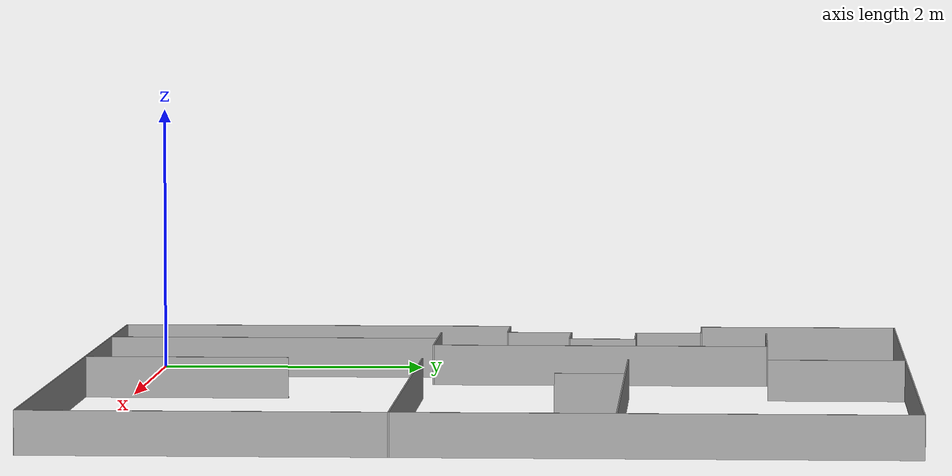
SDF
<?xml version='1.0'?>
<sdf version='1.6'>
  <model name='arena'>
    <pose frame=''>2.71801 2.66251 0 0 -0 0</pose>
    <link name='Wall_1'>
      <collision name='Wall_1_Collision'>
        <geometry>
          <box>
            <size>6 0.01 0.3</size>
          </box>
        </geometry>
        <pose frame=''>0 0 0.15 0 -0 0</pose>
      </collision>
      <visual name='Wall_1_Visual'>
        <pose frame=''>0 0 0.15 0 -0 0</pose>
        <geometry>
          <box>
            <size>6 0.01 0.3</size>
          </box>
        </geometry>
        <material>
          <script>
            <uri>file://media/materials/scripts/gazebo.material</uri>
            <name>Gazebo/Grey</name>
          </script>
          <ambient>1 1 1 1</ambient>
        </material>
        <meta>
          <layer>0</layer>
        </meta>
      </visual>
      <pose frame=''>0.001988 -2.99751 0 0 -0 0</pose>
    </link>
    <link name='Wall_11'>
      <collision name='Wall_11_Collision'>
        <geometry>
          <box>
            <size>1.5 0.01 0.3</size>
          </box>
        </geometry>
        <pose frame=''>0 0 0.15 0 -0 0</pose>
      </collision>
      <visual name='Wall_11_Visual'>
        <pose frame=''>0 0 0.15 0 -0 0</pose>
        <geometry>
          <box>
            <size>1.5 0.01 0.3</size>
          </box>
        </geometry>
        <material>
          <script>
            <uri>file://media/materials/scripts/gazebo.material</uri>
            <name>Gazebo/Grey</name>
          </script>
          <ambient>1 1 1 1</ambient>
        </material>
        <meta>
          <layer>0</layer>
        </meta>
      </visual>
      <pose frame=''>-2.99841 2.25251 0 0 -0 1.5708</pose>
    </link>
    <link name='Wall_20'>
      <collision name='Wall_20_Collision'>
        <geometry>
          <box>
            <size>0.5 0.01 0.3</size>
          </box>
        </geometry>
        <pose frame=''>0 0 0.15 0 -0 0</pose>
      </collision>
      <visual name='Wall_20_Visual'>
        <pose frame=''>0 0 0.15 0 -0 0</pose>
        <geometry>
          <box>
            <size>0.5 0.01 0.3</size>
          </box>
        </geometry>
        <material>
          <script>
            <uri>file://media/materials/scripts/gazebo.material</uri>
            <name>Gazebo/Grey</name>
          </script>
          <ambient>1 1 1 1</ambient>
        </material>
        <meta>
          <layer>0</layer>
        </meta>
      </visual>
      <pose frame=''>-2.75425 1.50057 0 0 -0 0</pose>
    </link>
    <link name='Wall_22'>
      <collision name='Wall_22_Collision'>
        <geometry>
          <box>
            <size>0.5 0.01 0.3</size>
          </box>
        </geometry>
        <pose frame=''>0 0 0.15 0 -0 0</pose>
      </collision>
      <visual name='Wall_22_Visual'>
        <pose frame=''>0 0 0.15 0 -0 0</pose>
        <geometry>
          <box>
            <size>0.5 0.01 0.3</size>
          </box>
        </geometry>
        <material>
          <script>
            <uri>file://media/materials/scripts/gazebo.material</uri>
            <name>Gazebo/Grey</name>
          </script>
          <ambient>1 1 1 1</ambient>
        </material>
        <meta>
          <layer>0</layer>
        </meta>
      </visual>
      <pose frame=''>-2.50969 1.25495 0 0 -0 1.5708</pose>
    </link>
    <link name='Wall_24'>
      <collision name='Wall_24_Collision'>
        <geometry>
          <box>
            <size>0.5 0.01 0.3</size>
          </box>
        </geometry>
        <pose frame=''>0 0 0.15 0 -0 0</pose>
      </collision>
      <visual name='Wall_24_Visual'>
        <pose frame=''>0 0 0.15 0 -0 0</pose>
        <geometry>
          <box>
            <size>0.5 0.01 0.3</size>
          </box>
        </geometry>
        <material>
          <script>
            <uri>file://media/materials/scripts/gazebo.material</uri>
            <name>Gazebo/Grey</name>
          </script>
          <ambient>1 1 1 1</ambient>
        </material>
        <meta>
          <layer>0</layer>
        </meta>
      </visual>
      <pose frame=''>-2.26459 1.00122 0 0 -0 0</pose>
    </link>
    <link name='Wall_28'>
      <collision name='Wall_28_Collision'>
        <geometry>
          <box>
            <size>0.5 0.01 0.3</size>
          </box>
        </geometry>
        <pose frame=''>0 0 0.15 0 -0 0</pose>
      </collision>
      <visual name='Wall_28_Visual'>
        <pose frame=''>0 0 0.15 0 -0 0</pose>
        <geometry>
          <box>
            <size>0.5 0.01 0.3</size>
          </box>
        </geometry>
        <material>
          <script>
            <uri>file://media/materials/scripts/gazebo.material</uri>
            <name>Gazebo/Grey</name>
          </script>
          <ambient>1 1 1 1</ambient>
        </material>
        <meta>
          <layer>0</layer>
        </meta>
      </visual>
      <pose frame=''>-2.01503 0.755808 0 0 -0 -1.5708</pose>
    </link>
    <link name='Wall_30'>
      <collision name='Wall_30_Collision'>
        <geometry>
          <box>
            <size>0.5 0.01 0.3</size>
          </box>
        </geometry>
        <pose frame=''>0 0 0.15 0 -0 0</pose>
      </collision>
      <visual name='Wall_30_Visual'>
        <pose frame=''>0 0 0.15 0 -0 0</pose>
        <geometry>
          <box>
            <size>0.5 0.01 0.3</size>
          </box>
        </geometry>
        <material>
          <script>
            <uri>file://media/materials/scripts/gazebo.material</uri>
            <name>Gazebo/Grey</name>
          </script>
          <ambient>1 1 1 1</ambient>
        </material>
        <meta>
          <layer>0</layer>
        </meta>
      </visual>
      <pose frame=''>-2.25991 0.503524 0 0 -0 0</pose>
    </link>
    <link name='Wall_34'>
      <collision name='Wall_34_Collision'>
        <geometry>
          <box>
            <size>0.5 0.01 0.3</size>
          </box>
        </geometry>
        <pose frame=''>0 0 0.15 0 -0 0</pose>
      </collision>
      <visual name='Wall_34_Visual'>
        <pose frame=''>0 0 0.15 0 -0 0</pose>
        <geometry>
          <box>
            <size>0.5 0.01 0.3</size>
          </box>
        </geometry>
        <material>
          <script>
            <uri>file://media/materials/scripts/gazebo.material</uri>
            <name>Gazebo/Grey</name>
          </script>
          <ambient>1 1 1 1</ambient>
        </material>
        <meta>
          <layer>0</layer>
        </meta>
      </visual>
      <pose frame=''>-2.50907 0.257403 0 0 -0 -1.5708</pose>
    </link>
    <link name='Wall_36'>
      <collision name='Wall_36_Collision'>
        <geometry>
          <box>
            <size>0.5 0.01 0.3</size>
          </box>
        </geometry>
        <pose frame=''>0 0 0.15 0 -0 0</pose>
      </collision>
      <visual name='Wall_36_Visual'>
        <pose frame=''>0 0 0.15 0 -0 0</pose>
        <geometry>
          <box>
            <size>0.5 0.01 0.3</size>
          </box>
        </geometry>
        <material>
          <script>
            <uri>file://media/materials/scripts/gazebo.material</uri>
            <name>Gazebo/Grey</name>
          </script>
          <ambient>1 1 1 1</ambient>
        </material>
        <meta>
          <layer>0</layer>
        </meta>
      </visual>
      <pose frame=''>-2.75227 0.011599 0 0 -0 0</pose>
    </link>
    <link name='Wall_38'>
      <collision name='Wall_38_Collision'>
        <geometry>
          <box>
            <size>3.012 0.01 0.3</size>
          </box>
        </geometry>
        <pose frame=''>0 0 0.15 0 -0 0</pose>
      </collision>
      <visual name='Wall_38_Visual'>
        <pose frame=''>0 0 0.15 0 -0 0</pose>
        <geometry>
          <box>
            <size>3.012 0.01 0.3</size>
          </box>
        </geometry>
        <material>
          <script>
            <uri>file://media/materials/scripts/gazebo.material</uri>
            <name>Gazebo/Grey</name>
          </script>
          <ambient>1 1 1 1</ambient>
        </material>
        <meta>
          <layer>0</layer>
        </meta>
      </visual>
      <pose frame=''>-2.99601 -1.49551 0 0 -0 -1.5708</pose>
    </link>
    <link name='Wall_41'>
      <collision name='Wall_41_Collision'>
        <geometry>
          <box>
            <size>1 0.01 0.3</size>
          </box>
        </geometry>
        <pose frame=''>0 0 0.15 0 -0 0</pose>
      </collision>
      <visual name='Wall_41_Visual'>
        <pose frame=''>0 0 0.15 0 -0 0</pose>
        <geometry>
          <box>
            <size>1 0.01 0.3</size>
          </box>
        </geometry>
        <material>
          <script>
            <uri>file://media/materials/scripts/gazebo.material</uri>
            <name>Gazebo/Grey</name>
          </script>
          <ambient>1 1 1 1</ambient>
        </material>
        <meta>
          <layer>0</layer>
        </meta>
      </visual>
      <pose frame=''>-0.498279 2.49812 0 0 -0 1.5708</pose>
    </link>
    <link name='Wall_44'>
      <collision name='Wall_44_Collision'>
        <geometry>
          <box>
            <size>3.5 0.01 0.3</size>
          </box>
        </geometry>
        <pose frame=''>0 0 0.15 0 -0 0</pose>
      </collision>
      <visual name='Wall_44_Visual'>
        <pose frame=''>0 0 0.15 0 -0 0</pose>
        <geometry>
          <box>
            <size>3.5 0.01 0.3</size>
          </box>
        </geometry>
        <material>
          <script>
            <uri>file://media/materials/scripts/gazebo.material</uri>
            <name>Gazebo/Grey</name>
          </script>
          <ambient>1 1 1 1</ambient>
        </material>
        <meta>
          <layer>0</layer>
        </meta>
      </visual>
      <pose frame=''>1.25071 0.982331 0 0 -0 0</pose>
    </link>
    <link name='Wall_46'>
      <collision name='Wall_46_Collision'>
        <geometry>
          <box>
            <size>0.5 0.01 0.3</size>
          </box>
        </geometry>
        <pose frame=''>0 0 0.15 0 -0 0</pose>
      </collision>
      <visual name='Wall_46_Visual'>
        <pose frame=''>0 0 0.15 0 -0 0</pose>
        <geometry>
          <box>
            <size>0.5 0.01 0.3</size>
          </box>
        </geometry>
        <material>
          <script>
            <uri>file://media/materials/scripts/gazebo.material</uri>
            <name>Gazebo/Grey</name>
          </script>
          <ambient>1 1 1 1</ambient>
        </material>
        <meta>
          <layer>0</layer>
        </meta>
      </visual>
      <pose frame=''>0.496275 0.729352 0 0 -0 1.5708</pose>
    </link>
    <link name='Wall_48'>
      <collision name='Wall_48_Collision'>
        <geometry>
          <box>
            <size>3.5 0.01 0.3</size>
          </box>
        </geometry>
        <pose frame=''>0 0 0.15 0 -0 0</pose>
      </collision>
      <visual name='Wall_48_Visual'>
        <pose frame=''>0 0 0.15 0 -0 0</pose>
        <geometry>
          <box>
            <size>3.5 0.01 0.3</size>
          </box>
        </geometry>
        <material>
          <script>
            <uri>file://media/materials/scripts/gazebo.material</uri>
            <name>Gazebo/Grey</name>
          </script>
          <ambient>1 1 1 1</ambient>
        </material>
        <meta>
          <layer>0</layer>
        </meta>
      </visual>
      <pose frame=''>1.25425 -0.520404 0 0 -0 0</pose>
    </link>
    <link name='Wall_50'>
      <collision name='Wall_50_Collision'>
        <geometry>
          <box>
            <size>1.5 0.01 0.3</size>
          </box>
        </geometry>
        <pose frame=''>0 0 0.15 0 -0 0</pose>
      </collision>
      <visual name='Wall_50_Visual'>
        <pose frame=''>0 0 0.15 0 -0 0</pose>
        <geometry>
          <box>
            <size>1.5 0.01 0.3</size>
          </box>
        </geometry>
        <material>
          <script>
            <uri>file://media/materials/scripts/gazebo.material</uri>
            <name>Gazebo/Grey</name>
          </script>
          <ambient>1 1 1 1</ambient>
        </material>
        <meta>
          <layer>0</layer>
        </meta>
      </visual>
      <pose frame=''>-0.512233 -2.25115 0 0 -0 -1.5708</pose>
    </link>
    <link name='Wall_52'>
      <collision name='Wall_52_Collision'>
        <geometry>
          <box>
            <size>2.5 0.01 0.3</size>
          </box>
        </geometry>
        <pose frame=''>0 0 0.15 0 -0 0</pose>
      </collision>
      <visual name='Wall_52_Visual'>
        <pose frame=''>0 0 0.15 0 -0 0</pose>
        <geometry>
          <box>
            <size>2.5 0.01 0.3</size>
          </box>
        </geometry>
        <material>
          <script>
            <uri>file://media/materials/scripts/gazebo.material</uri>
            <name>Gazebo/Grey</name>
          </script>
          <ambient>1 1 1 1</ambient>
        </material>
        <meta>
          <layer>0</layer>
        </meta>
      </visual>
      <pose frame=''>-2.00505 -1.74423 0 0 -0 -1.5708</pose>
    </link>
    <link name='Wall_54'>
      <collision name='Wall_54_Collision'>
        <geometry>
          <box>
            <size>1 0.01 0.3</size>
          </box>
        </geometry>
        <pose frame=''>0 0 0.15 0 -0 0</pose>
      </collision>
      <visual name='Wall_54_Visual'>
        <pose frame=''>0 0 0.15 0 -0 0</pose>
        <geometry>
          <box>
            <size>1 0.01 0.3</size>
          </box>
        </geometry>
        <material>
          <script>
            <uri>file://media/materials/scripts/gazebo.material</uri>
            <name>Gazebo/Grey</name>
          </script>
          <ambient>1 1 1 1</ambient>
        </material>
        <meta>
          <layer>0</layer>
        </meta>
      </visual>
      <pose frame=''>-1.98078 -0.499121 0 0 -0 0</pose>
    </link>
    <link name='Wall_56'>
      <collision name='Wall_56_Collision'>
        <geometry>
          <box>
            <size>2.5 0.01 0.3</size>
          </box>
        </geometry>
        <pose frame=''>0 0 0.15 0 -0 0</pose>
      </collision>
      <visual name='Wall_56_Visual'>
        <pose frame=''>0 0 0.15 0 -0 0</pose>
        <geometry>
          <box>
            <size>2.5 0.01 0.3</size>
          </box>
        </geometry>
        <material>
          <script>
            <uri>file://media/materials/scripts/gazebo.material</uri>
            <name>Gazebo/Grey</name>
          </script>
          <ambient>1 1 1 1</ambient>
        </material>
        <meta>
          <layer>0</layer>
        </meta>
      </visual>
      <pose frame=''>-1.48616 0.751059 0 0 -0 -1.5708</pose>
    </link>
    <link name='Wall_58'>
      <collision name='Wall_58_Collision'>
        <geometry>
          <box>
            <size>1 0.01 0.3</size>
          </box>
        </geometry>
        <pose frame=''>0 0 0.15 0 -0 0</pose>
      </collision>
      <visual name='Wall_58_Visual'>
        <pose frame=''>0 0 0.15 0 -0 0</pose>
        <geometry>
          <box>
            <size>1 0.01 0.3</size>
          </box>
        </geometry>
        <material>
          <script>
            <uri>file://media/materials/scripts/gazebo.material</uri>
            <name>Gazebo/Grey</name>
          </script>
          <ambient>1 1 1 1</ambient>
        </material>
        <meta>
          <layer>0</layer>
        </meta>
      </visual>
      <pose frame=''>-1.9786 2.00012 0 0 -0 0</pose>
    </link>
    <link name='Wall_6'>
      <collision name='Wall_6_Collision'>
        <geometry>
          <box>
            <size>6 0.01 0.3</size>
          </box>
        </geometry>
        <pose frame=''>0 0 0.15 0 -0 0</pose>
      </collision>
      <visual name='Wall_6_Visual'>
        <pose frame=''>0 0 0.15 0 -0 0</pose>
        <geometry>
          <box>
            <size>6 0.01 0.3</size>
          </box>
        </geometry>
        <material>
          <script>
            <uri>file://media/materials/scripts/gazebo.material</uri>
            <name>Gazebo/Grey</name>
          </script>
          <ambient>1 1 1 1</ambient>
        </material>
        <meta>
          <layer>0</layer>
        </meta>
      </visual>
      <pose frame=''>2.99837 -0.000334 0 0 -0 -1.5708</pose>
    </link>
    <link name='Wall_8'>
      <collision name='Wall_8_Collision'>
        <geometry>
          <box>
            <size>6 0.01 0.3</size>
          </box>
        </geometry>
        <pose frame=''>0 0 0.15 0 -0 0</pose>
      </collision>
      <visual name='Wall_8_Visual'>
        <pose frame=''>0 0 0.15 0 -0 0</pose>
        <geometry>
          <box>
            <size>6 0.01 0.3</size>
          </box>
        </geometry>
        <material>
          <script>
            <uri>file://media/materials/scripts/gazebo.material</uri>
            <name>Gazebo/Grey</name>
          </script>
          <ambient>1 1 1 1</ambient>
        </material>
        <meta>
          <layer>0</layer>
        </meta>
      </visual>
      <pose frame=''>-0.003034 2.99691 0 0 -0 0</pose>
    </link>
    <static>1</static>
  </model>
</sdf>
